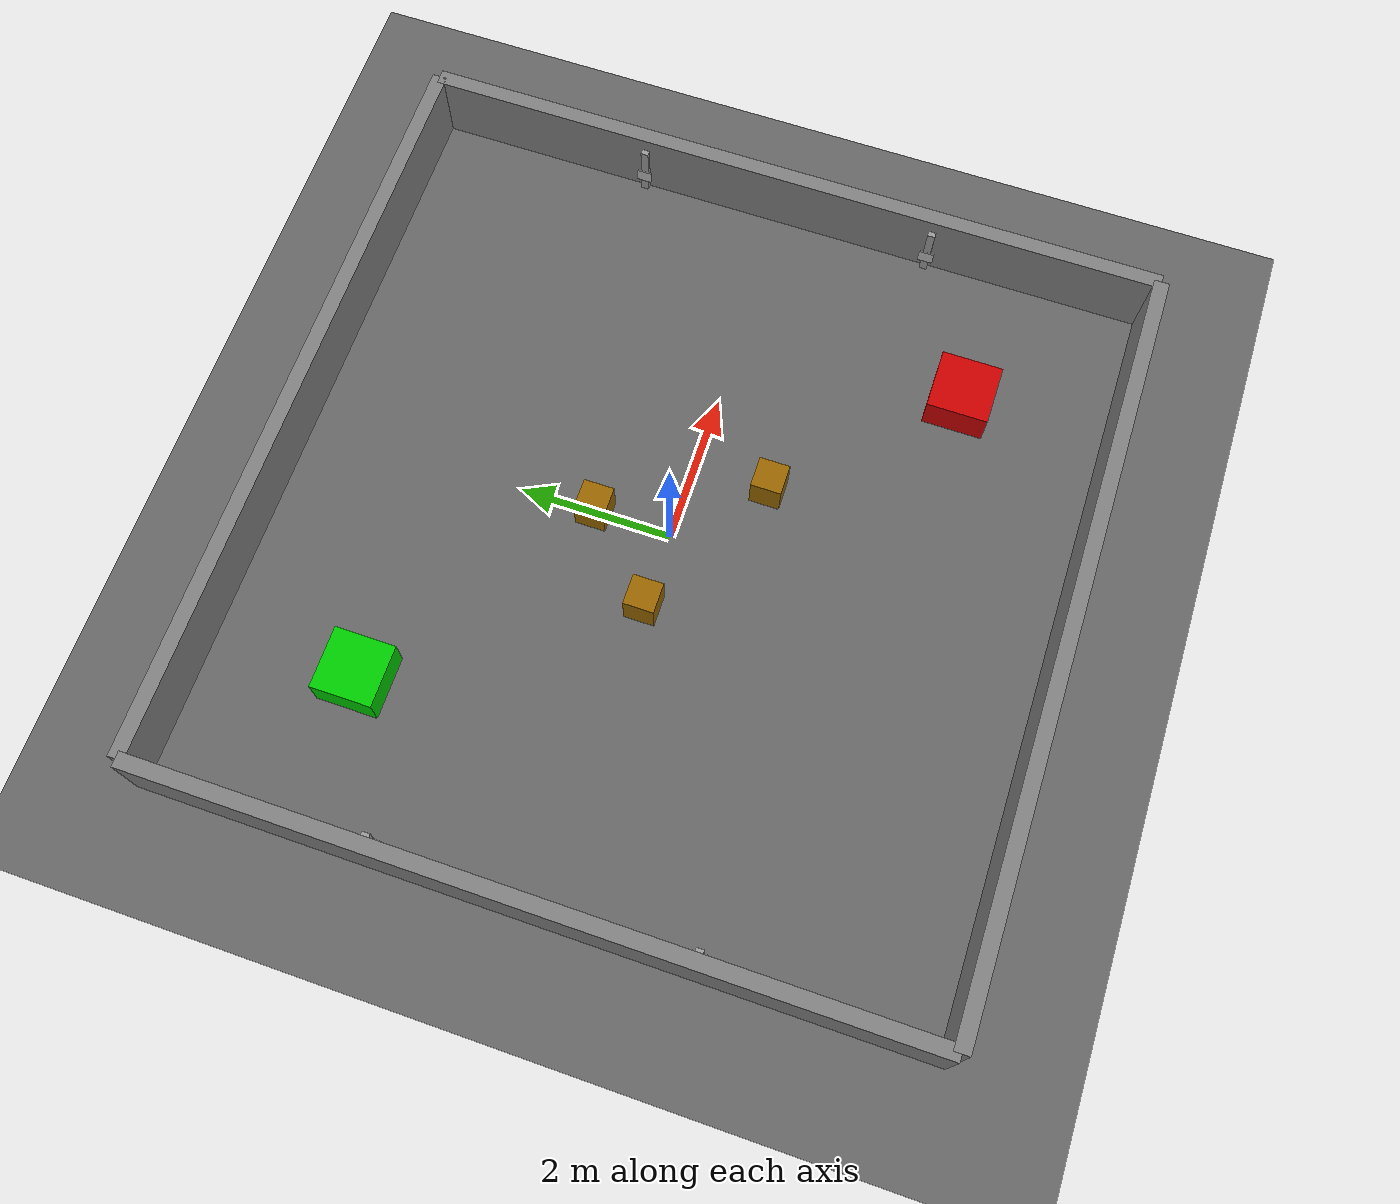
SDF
<?xml version="1.0" ?>
<sdf version="1.8">
  <world name="factory_world">

    <physics name="1ms" type="ignored">
      <max_step_size>0.001</max_step_size>
      <real_time_factor>1.0</real_time_factor>
    </physics>

    <plugin filename="gz-sim-physics-system"
            name="gz::sim::systems::Physics"/>
    <plugin filename="gz-sim-user-commands-system"
            name="gz::sim::systems::UserCommands"/>
    <plugin filename="gz-sim-scene-broadcaster-system"
            name="gz::sim::systems::SceneBroadcaster"/>
    <plugin filename="gz-sim-sensors-system"
            name="gz::sim::systems::Sensors">
      <render_engine>ogre2</render_engine>
    </plugin>

    <light name="sun" type="directional">
      <cast_shadows>true</cast_shadows>
      <pose>0 0 10 0 0 0</pose>
      <diffuse>0.8 0.8 0.8 1</diffuse>
      <specular>0.2 0.2 0.2 1</specular>
      <direction>-0.5 0.1 -0.9</direction>
    </light>

    <model name="ground_plane">
      <static>true</static>
      <link name="link">
        <collision name="collision">
          <geometry>
            <plane><normal>0 0 1</normal><size>20 20</size></plane>
          </geometry>
        </collision>
        <visual name="visual">
          <geometry>
            <plane><normal>0 0 1</normal><size>20 20</size></plane>
          </geometry>
          <material>
            <ambient>0.4 0.4 0.4 1</ambient>
            <diffuse>0.4 0.4 0.4 1</diffuse>
          </material>
        </visual>
      </link>
    </model>

    <model name="wall_north">
      <static>true</static>
      <pose>0 5 0.5 0 0 0</pose>
      <link name="link">
        <collision name="collision">
          <geometry><box><size>10 0.2 1.0</size></box></geometry>
        </collision>
        <visual name="visual">
          <geometry><box><size>10 0.2 1.0</size></box></geometry>
          <material><ambient>0.5 0.5 0.5 1</ambient></material>
        </visual>
      </link>
    </model>

    <model name="wall_south">
      <static>true</static>
      <pose>0 -5 0.5 0 0 0</pose>
      <link name="link">
        <collision name="collision">
          <geometry><box><size>10 0.2 1.0</size></box></geometry>
        </collision>
        <visual name="visual">
          <geometry><box><size>10 0.2 1.0</size></box></geometry>
          <material><ambient>0.5 0.5 0.5 1</ambient></material>
        </visual>
      </link>
    </model>

    <model name="wall_east">
      <static>true</static>
      <pose>5 0 0.5 0 0 0</pose>
      <link name="link">
        <collision name="collision">
          <geometry><box><size>0.2 10 1.0</size></box></geometry>
        </collision>
        <visual name="visual">
          <geometry><box><size>0.2 10 1.0</size></box></geometry>
          <material><ambient>0.5 0.5 0.5 1</ambient></material>
        </visual>
      </link>
    </model>

    <model name="wall_west">
      <static>true</static>
      <pose>-5 0 0.5 0 0 0</pose>
      <link name="link">
        <collision name="collision">
          <geometry><box><size>0.2 10 1.0</size></box></geometry>
        </collision>
        <visual name="visual">
          <geometry><box><size>0.2 10 1.0</size></box></geometry>
          <material><ambient>0.5 0.5 0.5 1</ambient></material>
        </visual>
      </link>
    </model>

    <model name="pickup_station">
      <static>true</static>
      <pose>-3 3 0.25 0 0 0</pose>
      <link name="link">
        <collision name="collision">
          <geometry><box><size>0.8 0.8 0.5</size></box></geometry>
        </collision>
        <visual name="visual">
          <geometry><box><size>0.8 0.8 0.5</size></box></geometry>
          <material><ambient>0.0 0.8 0.0 1</ambient><diffuse>0.0 0.8 0.0 1</diffuse></material>
        </visual>
      </link>
    </model>

    <model name="dropoff_station">
      <static>true</static>
      <pose>3 -3 0.25 0 0 0</pose>
      <link name="link">
        <collision name="collision">
          <geometry><box><size>0.8 0.8 0.5</size></box></geometry>
        </collision>
        <visual name="visual">
          <geometry><box><size>0.8 0.8 0.5</size></box></geometry>
          <material><ambient>0.8 0.0 0.0 1</ambient><diffuse>0.8 0.0 0.0 1</diffuse></material>
        </visual>
      </link>
    </model>

    <model name="obstacle_1">
      <static>true</static>
      <pose>0 1 0.25 0 0 0</pose>
      <link name="link">
        <collision name="collision">
          <geometry><box><size>0.4 0.4 0.5</size></box></geometry>
        </collision>
        <visual name="visual">
          <geometry><box><size>0.4 0.4 0.5</size></box></geometry>
          <material><ambient>0.6 0.4 0.0 1</ambient></material>
        </visual>
      </link>
    </model>

    <model name="obstacle_2">
      <static>true</static>
      <pose>1 -1 0.25 0 0 0</pose>
      <link name="link">
        <collision name="collision">
          <geometry><box><size>0.4 0.4 0.5</size></box></geometry>
        </collision>
        <visual name="visual">
          <geometry><box><size>0.4 0.4 0.5</size></box></geometry>
          <material><ambient>0.6 0.4 0.0 1</ambient></material>
        </visual>
      </link>
    </model>

    <model name="obstacle_3">
      <static>true</static>
      <pose>-1 0 0.25 0 0 0</pose>
      <link name="link">
        <collision name="collision">
          <geometry><box><size>0.4 0.4 0.5</size></box></geometry>
        </collision>
        <visual name="visual">
          <geometry><box><size>0.4 0.4 0.5</size></box></geometry>
          <material><ambient>0.6 0.4 0.0 1</ambient></material>
        </visual>
      </link>
    </model>

    <include>
      <uri>model://station_A_001</uri>
      <name>station_A_001</name>
      <pose>-4.88 2.0 0.0 0 0 0</pose>
    </include>

    <include>
      <uri>model://station_A_002</uri>
      <name>station_A_002</name>
      <pose>-4.88 -2.0 0.0 0 0 0</pose>
    </include>

    <include>
      <uri>model://station_B_001</uri>
      <name>station_B_001</name>
      <pose>4.88 2.0 0.0 0 0 3.14159</pose>
    </include>

    <include>
      <uri>model://station_B_002</uri>
      <name>station_B_002</name>
      <pose>4.88 -2.0 0.0 0 0 3.14159</pose>
    </include>

  </world>
</sdf>

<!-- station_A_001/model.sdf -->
<sdf version="1.8">
  <model name="station_A_001">
    <static>true</static>
    <link name="link">
      <!-- Support Pillar -->
      <collision name="pillar_collision">
        <pose>0 0 0.4 0 0 0</pose>
        <geometry>
          <box>
            <size>0.1 0.1 0.8</size>
          </box>
        </geometry>
      </collision>
      <visual name="pillar_visual">
        <pose>0 0 0.4 0 0 0</pose>
        <geometry>
          <box>
            <size>0.1 0.1 0.8</size>
          </box>
        </geometry>
        <material>
          <ambient>0.6 0.6 0.6 1</ambient>
          <diffuse>0.6 0.6 0.6 1</diffuse>
        </material>
      </visual>

      <!-- QR Code Plate -->
      <collision name="qr_collision">
        <pose>0.055 0 0.3 0 0 0</pose>
        <geometry>
          <box>
            <size>0.01 0.2 0.2</size>
          </box>
        </geometry>
      </collision>
      <visual name="qr_visual">
        <pose>0.055 0 0.3 0 0 0</pose>
        <geometry>
          <box>
            <size>0.01 0.2 0.2</size>
          </box>
        </geometry>
        <material>
          <pbr>
            <metal>
              <albedo_map>materials/textures/station_A_001.png</albedo_map>
            </metal>
          </pbr>
        </material>
      </visual>
    </link>
  </model>
</sdf>

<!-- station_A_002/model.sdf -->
<sdf version="1.8">
  <model name="station_A_002">
    <static>true</static>
    <link name="link">
      <!-- Support Pillar -->
      <collision name="pillar_collision">
        <pose>0 0 0.4 0 0 0</pose>
        <geometry>
          <box>
            <size>0.1 0.1 0.8</size>
          </box>
        </geometry>
      </collision>
      <visual name="pillar_visual">
        <pose>0 0 0.4 0 0 0</pose>
        <geometry>
          <box>
            <size>0.1 0.1 0.8</size>
          </box>
        </geometry>
        <material>
          <ambient>0.6 0.6 0.6 1</ambient>
          <diffuse>0.6 0.6 0.6 1</diffuse>
        </material>
      </visual>

      <!-- QR Code Plate -->
      <collision name="qr_collision">
        <pose>0.055 0 0.3 0 0 0</pose>
        <geometry>
          <box>
            <size>0.01 0.2 0.2</size>
          </box>
        </geometry>
      </collision>
      <visual name="qr_visual">
        <pose>0.055 0 0.3 0 0 0</pose>
        <geometry>
          <box>
            <size>0.01 0.2 0.2</size>
          </box>
        </geometry>
        <material>
          <pbr>
            <metal>
              <albedo_map>materials/textures/station_A_002.png</albedo_map>
            </metal>
          </pbr>
        </material>
      </visual>
    </link>
  </model>
</sdf>

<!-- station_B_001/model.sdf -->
<sdf version="1.8">
  <model name="station_B_001">
    <static>true</static>
    <link name="link">
      <!-- Support Pillar -->
      <collision name="pillar_collision">
        <pose>0 0 0.4 0 0 0</pose>
        <geometry>
          <box>
            <size>0.1 0.1 0.8</size>
          </box>
        </geometry>
      </collision>
      <visual name="pillar_visual">
        <pose>0 0 0.4 0 0 0</pose>
        <geometry>
          <box>
            <size>0.1 0.1 0.8</size>
          </box>
        </geometry>
        <material>
          <ambient>0.6 0.6 0.6 1</ambient>
          <diffuse>0.6 0.6 0.6 1</diffuse>
        </material>
      </visual>

      <!-- QR Code Plate -->
      <collision name="qr_collision">
        <pose>0.055 0 0.3 0 0 0</pose>
        <geometry>
          <box>
            <size>0.01 0.2 0.2</size>
          </box>
        </geometry>
      </collision>
      <visual name="qr_visual">
        <pose>0.055 0 0.3 0 0 0</pose>
        <geometry>
          <box>
            <size>0.01 0.2 0.2</size>
          </box>
        </geometry>
        <material>
          <pbr>
            <metal>
              <albedo_map>materials/textures/station_B_001.png</albedo_map>
            </metal>
          </pbr>
        </material>
      </visual>
    </link>
  </model>
</sdf>

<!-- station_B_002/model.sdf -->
<sdf version="1.8">
  <model name="station_B_002">
    <static>true</static>
    <link name="link">
      <!-- Support Pillar -->
      <collision name="pillar_collision">
        <pose>0 0 0.4 0 0 0</pose>
        <geometry>
          <box>
            <size>0.1 0.1 0.8</size>
          </box>
        </geometry>
      </collision>
      <visual name="pillar_visual">
        <pose>0 0 0.4 0 0 0</pose>
        <geometry>
          <box>
            <size>0.1 0.1 0.8</size>
          </box>
        </geometry>
        <material>
          <ambient>0.6 0.6 0.6 1</ambient>
          <diffuse>0.6 0.6 0.6 1</diffuse>
        </material>
      </visual>

      <!-- QR Code Plate -->
      <collision name="qr_collision">
        <pose>0.055 0 0.3 0 0 0</pose>
        <geometry>
          <box>
            <size>0.01 0.2 0.2</size>
          </box>
        </geometry>
      </collision>
      <visual name="qr_visual">
        <pose>0.055 0 0.3 0 0 0</pose>
        <geometry>
          <box>
            <size>0.01 0.2 0.2</size>
          </box>
        </geometry>
        <material>
          <pbr>
            <metal>
              <albedo_map>materials/textures/station_B_002.png</albedo_map>
            </metal>
          </pbr>
        </material>
      </visual>
    </link>
  </model>
</sdf>
